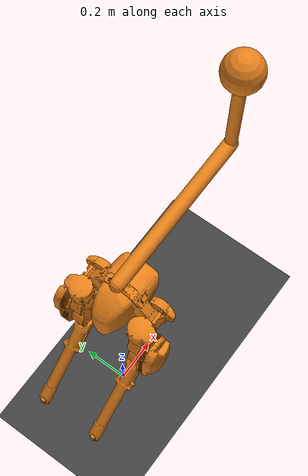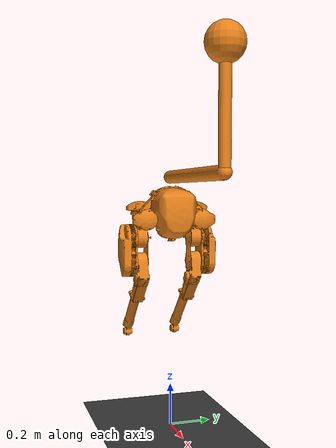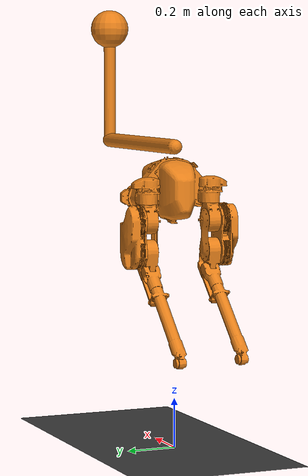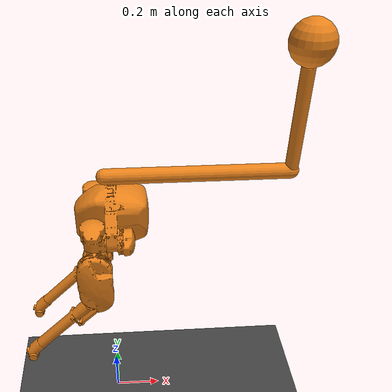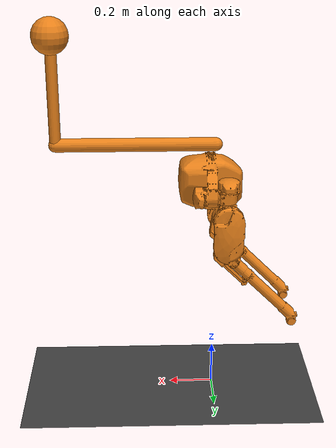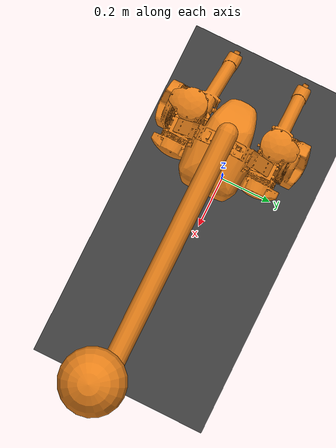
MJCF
<!-- Cassie simulation model developed by the Dynamic Robotics Laboratory -->
<mujoco model='cassie'>
  <compiler inertiafromgeom='auto' angle='degree' eulerseq='zyx' meshdir='cassie-stl-meshes'/>
  <size nuser_actuator='1' nuser_sensor='1' nuser_geom='1'/>
  <option timestep='0.0005' iterations='50' solver='PGS' gravity='0 0 -9.81'/>
  <!-- Timestep is set to 0.0005 because our controller runs at 2 kHz -->
  <!-- Larger values still have stable dynamics -->

  <visual>
    <quality shadowsize='4096'/>
    <map znear='0.05'/>
  </visual>

  <default>
    <joint limited='true'/>
    <motor ctrllimited='true'/>
    <geom contype='0' conaffinity='0' condim='1' solref='0.005 1'/>
    <equality solref='0.005 1'/>
    <default class='cassie'>
      <geom material='cassie'/>
    </default>
    <default class='collision'>
      <!-- User parameter for geoms is used to identify collision types -->
      <geom material='collision' contype='1' user='2'/>
      <default class='collision-left'>
        <geom contype='2' conaffinity='4'/>
      </default>
      <default class='collision-right'>
        <geom contype='4' conaffinity='2'/>
      </default>
    </default>
    <default class='obstacle'>
      <geom material='obstacle' condim='3' contype='8' conaffinity='15' user='1'/>
    </default>
  </default>

  <asset>
    <texture type='skybox' builtin='gradient' width='128' height='128' rgb1='0.4 0.6 0.8' rgb2='0 0 0'/>
    <texture name='plane' type='2d' builtin='checker' rgb1='0.2 0.2 0.2' rgb2='0.3 0.3 0.3' width='512' height='512'/>
    <material name='plane' reflectance='0.0' texture='plane' texrepeat='1 1' texuniform='true'/>
    <material name='cassie'    rgba='0.9 0.5 0.1 1'/>
    <material name='collision' rgba='0.1 0.5 0.9 0'/>
    <material name='obstacle'  rgba='0.2 0.6 0.2 1'/>
    <mesh name='cassie-pelvis' file='pelvis.stl'/>
    <mesh name='left-hip-roll'     file='hip-roll.stl'/>
    <mesh name='left-hip-yaw'      file='hip-yaw.stl'/>
    <mesh name='left-hip-pitch'    file='hip-pitch.stl'/>
    <mesh name='left-achilles-rod' file='achilles-rod.stl'/>
    <mesh name='left-knee'         file='knee.stl'/>
    <mesh name='left-knee-spring'  file='knee-spring.stl'/>
    <mesh name='left-shin'         file='shin.stl'/>
    <mesh name='left-tarsus'       file='tarsus.stl'/>
    <mesh name='left-heel-spring'  file='heel-spring.stl'/>
    <mesh name='left-foot-crank'   file='foot-crank.stl'/>
    <mesh name='left-plantar-rod'  file='plantar-rod.stl'/>
    <mesh name='left-foot'         file='foot.stl'/>
    <mesh name='right-hip-roll'     scale='1 -1 1' file='hip-roll.stl'/>
    <mesh name='right-hip-yaw'      scale='1 -1 1' file='hip-yaw.stl'/>
    <mesh name='right-hip-pitch'    scale='1 1 -1' file='hip-pitch.stl'/>
    <mesh name='right-achilles-rod' scale='1 1 -1' file='achilles-rod.stl'/>
    <mesh name='right-knee'         scale='1 1 -1' file='knee.stl'/>
    <mesh name='right-knee-spring'  scale='1 1 -1' file='knee-spring.stl'/>
    <mesh name='right-shin'         scale='1 1 -1' file='shin.stl'/>
    <mesh name='right-tarsus'       scale='1 1 -1' file='tarsus.stl'/>
    <mesh name='right-heel-spring'  scale='1 1 -1' file='heel-spring.stl'/>
    <mesh name='right-foot-crank'   scale='1 1 -1' file='foot-crank.stl'/>
    <mesh name='right-plantar-rod'  scale='1 1 -1' file='plantar-rod.stl'/>
    <mesh name='right-foot'         scale='1 1 -1' file='foot.stl'/>
  </asset>

  <worldbody>
    <geom name='floor' pos='0.0 0 -0.01' size='100 5 .125' type='plane' material='plane' condim='3' conaffinity='15' priority="1"/>

    <light mode='trackcom' pos='0 0 5' dir='0 0 -1'/>
    <light directional='true' pos='0 0 3' dir='0 0 -1' diffuse='0.2 0.2 0.2' specular='0 0 0'/>

    <body name='cassie-pelvis' pos='0 0 1.01' childclass='cassie'>
      <camera name='track' pos='0 -3 1' zaxis='0 -1 0.5' mode='track'/>
      <inertial pos='0.05066 0.000346 0.02841' mass='10.33' fullinertia='0.085821 0.049222 0.08626 1.276e-05 -0.00016022 -0.000414'/>
      <joint type='slide' axis='1 0 0' limited='true' range='0 0.00001'/>
      <joint type='slide' axis='0 1 0' limited='true' range='0 0.00001'/>
      <joint type='slide' axis='0 0 1' limited='true' range='1.01 1.010001' ref='1.01'/>
      <joint type='ball' limited='true'/>
      <geom type='mesh' mesh='cassie-pelvis'/>
      <geom type='sphere' size='0.15' pos='0.02 0 0.02' class='collision'/>
      <site name='imu' size='0.01' pos='0.03155 0 -0.07996'/>
      <body name='left-hip-roll' pos='0.021 0.135 0' xyaxes='0 0 -1 0 1 0'>
        <inertial pos='-0.01793 0.0001 -0.04428' mass='1.82' fullinertia='0.003431 0.003793 0.002135 -6.65e-07 -0.00084 3.99e-06'/>
        <joint name='left-hip-roll' type='hinge' range='-15 22.5' damping='1' armature='0.038125'/>
        <geom type='mesh' mesh='left-hip-roll'/>
        <body name='left-hip-yaw' pos='0 0 -0.07' xyaxes='0 0 1 0 1 0'>
          <inertial pos='0 -1e-05 -0.034277' mass='1.171' fullinertia='0.002443 0.002803 0.000842 -4e-08 2.462e-07 -2.71e-08'/>
          <joint name='left-hip-yaw' type='hinge' range='-22.5 22.5' damping='1' armature='0.038125'/>
          <geom type='mesh' mesh='left-hip-yaw'/>
          <body name='left-hip-pitch' pos='0 0 -0.09' xyaxes='0 0 -1 1 0 0'>
            <inertial pos='0.05946 5e-05 -0.03581' mass='5.52' fullinertia='0.010898 0.029714 0.030257 -0.0002669 -5.721e-05 9.17e-06'/>
            <joint name='left-hip-pitch' type='hinge' range='-50 80' damping='1' armature='0.09344'/>
            <geom type='mesh' mesh='left-hip-pitch'/>
            <geom type='capsule' size='0.08' fromto='0 0 -0.04 0.12 0 -0.0355' class='collision'/>

            <body name='left-knee' pos='0.12 0 0.0045' xyaxes='0.70711 -0.70711 0 0.70711 0.70711 0'>
              <inertial pos='0.023 0.03207 -0.002181' mass='0.7578' fullinertia='0.001376 0.0010335 0.0021637 -0.00039744 -4.085e-05 -5.374e-05'/>
              <joint name='left-knee' type='hinge' ref='-45' range='-164 -37' damping='1' armature='0.09344'/>
              <geom type='mesh' mesh='left-knee'/>
              <body name='left-knee-spring' pos='0.06068 0.08241 0'>
                <inertial pos='0.0836 0.0034 0' mass='0.186' fullinertia='5.215e-05 0.00041205 0.0003669 6.87e-06 0 0'/>
                <geom type='mesh' mesh='left-knee-spring'/>
              </body>
              <body name='left-shin' pos='0.06068 0.04741 0'>
                <inertial pos='0.18338 0.001169 0.0002123' mass='0.577' fullinertia='0.00035939 0.014728 0.014707 -0.00020981 2.266e-05 -1.2e-07'/>
                <joint name='left-shin' type='hinge' range='-20 20' stiffness='1500' damping='0.1'/>
                <geom type='mesh' mesh='left-shin'/>
                <geom type='capsule' size='0.04' fromto='0 0 0 0.43476 0.02 0' class='collision-left'/>

              </body>
            </body>
          </body>
        </body>
      </body>
      <body name='right-hip-roll' pos='0.021 -0.135 0' xyaxes='0 0 -1 0 1 0'>
        <inertial pos='-0.01793 0.0001 -0.04428' mass='1.82' fullinertia='0.003431 0.003793 0.002135 6.65e-07 -0.00084 -3.99e-06'/>
        <joint name='right-hip-roll' type='hinge' range='-22.5 15' damping='1' armature='0.038125'/>
        <geom type='mesh' mesh='right-hip-roll'/>
        <body name='right-hip-yaw' pos='0 0 -0.07' xyaxes='0 0 1 0 1 0'>
          <inertial pos='0 1e-05 -0.034277' mass='1.171' fullinertia='0.002443 0.002803 0.000842 4e-08 2.462e-07 2.71e-08'/>
          <joint name='right-hip-yaw' type='hinge' range='-22.5 22.5' damping='1' armature='0.038125'/>
          <geom type='mesh' mesh='right-hip-yaw'/>
          <body name='right-hip-pitch' pos='0 0 -0.09' xyaxes='0 0 -1 1 0 0'>
            <inertial pos='0.05946 5e-05 0.03581' mass='5.52' fullinertia='0.010898 0.029714 0.030257 -0.0002669 5.721e-05 -9.17e-06'/>
            <joint name='right-hip-pitch' type='hinge' range='-50 80' damping='1' armature='0.09344'/>
            <geom type='mesh' mesh='right-hip-pitch'/>
            <geom type='capsule' size='0.08' fromto='0 0 0.04 0.12 0 0.0355' class='collision'/>
            <body name='right-knee' pos='0.12 0 -0.0045' xyaxes='0.70711 -0.70711 0 0.70711 0.70711 0'>
              <inertial pos='0.023 0.03207 0.002181' mass='0.7578' fullinertia='0.001376 0.0010335 0.0021637 -0.00039744 4.085e-05 5.374e-05'/>
              <joint name='right-knee' type='hinge' ref='-45' range='-164 -37' damping='1' armature='0.09344'/>
              <geom type='mesh' mesh='right-knee'/>
              <body name='right-knee-spring' pos='0.06068 0.08241 0'>
                <inertial pos='0.0836 0.0034 0' mass='0.186' fullinertia='5.215e-05 0.00041205 0.0003669 6.87e-06 0 0'/>
                <geom type='mesh' mesh='right-knee-spring'/>
              </body>
              <body name='right-shin' pos='0.06068 0.04741 0'>
                <inertial pos='0.18338 0.001169 -0.0002123' mass='0.577' fullinertia='0.00035939 0.014728 0.014707 -0.00020981 -2.266e-05 1.2e-07'/>
                <joint name='right-shin' type='hinge' range='-20 20' stiffness='1500' damping='0.1'/>
                <geom type='mesh' mesh='right-shin'/>
                <geom type='capsule' size='0.04' fromto='0 0 0 0.43476 0.02 0' class='collision-right'/>
              </body>
            </body>
          </body>
        </body>
      </body>
      <body name='yoke' pos='0.35 0 0.2' xyaxes='0 0 1 0 1 0'>
        <geom type='capsule' size='0.03 .35'/>
        <body name='slosh_string' pos='0.195 0 -0.35' xyaxes='0 0 1 0 1 0'>
          <joint type='hinge' axis='0 1 0' limited='false' pos='0.0 0.0 0.2' damping='10'/>
          <geom type='capsule' size='0.025 .2'/>
          <body name='slosh_mass' pos='0 0 -0.28'>
            <geom type='sphere' mass='5' size='.08'/>
          </body>
        </body>
      </body>
    </body>

  </worldbody>

  <equality>
  </equality>

  <actuator>
    <!-- User parameter is the maximum no-load motor RPM -->
    <motor name='left-hip-roll'  joint='left-hip-roll'  gear='25' ctrllimited='true' ctrlrange='-4.5 4.5'   user='2900'/>
    <motor name='left-hip-yaw'   joint='left-hip-yaw'   gear='25' ctrllimited='true' ctrlrange='-4.5 4.5'   user='2900'/>
    <motor name='left-hip-pitch' joint='left-hip-pitch' gear='16' ctrllimited='true' ctrlrange='-12.2 12.2' user='1300'/>
    <motor name='left-knee'      joint='left-knee'      gear='16' ctrllimited='true' ctrlrange='-12.2 12.2' user='1300'/>
    <motor name='right-hip-roll'  joint='right-hip-roll'  gear='25' ctrllimited='true' ctrlrange='-4.5 4.5'   user='2900'/>
    <motor name='right-hip-yaw'   joint='right-hip-yaw'   gear='25' ctrllimited='true' ctrlrange='-4.5 4.5'   user='2900'/>
    <motor name='right-hip-pitch' joint='right-hip-pitch' gear='16' ctrllimited='true' ctrlrange='-12.2 12.2' user='1300'/>
    <motor name='right-knee'      joint='right-knee'      gear='16' ctrllimited='true' ctrlrange='-12.2 12.2' user='1300'/>
  </actuator>

  <sensor>
    <actuatorpos name='left-hip-roll-input'  actuator='left-hip-roll'  user='13'/>
    <actuatorpos name='left-hip-yaw-input'   actuator='left-hip-yaw'   user='13'/>
    <actuatorpos name='left-hip-pitch-input' actuator='left-hip-pitch' user='13'/>
    <actuatorpos name='left-knee-input'      actuator='left-knee'      user='13'/>
    <jointpos    name='left-shin-output'     joint='left-shin'         user='18' noise='2e-4'/>
    <actuatorpos name='right-hip-roll-input'  actuator='right-hip-roll'   user='13'/>
    <actuatorpos name='right-hip-yaw-input'   actuator='right-hip-yaw'    user='13'/>
    <actuatorpos name='right-hip-pitch-input' actuator='right-hip-pitch'  user='13'/>
    <actuatorpos name='right-knee-input'      actuator='right-knee'       user='13'/>
    <jointpos    name='right-shin-output'     joint='right-shin'          user='18' noise='2e-4'/>

    <framequat     name='pelvis-orientation' objtype='site' objname='imu'/>
    <gyro          name='pelvis-angular-velocity'    site='imu' noise='5e-4' cutoff='34.9'/>
    <accelerometer name='pelvis-linear-acceleration' site='imu' noise='1e-2' cutoff='157'/>
    <magnetometer  name='pelvis-magnetometer'        site='imu'/>
  </sensor>

</mujoco>
